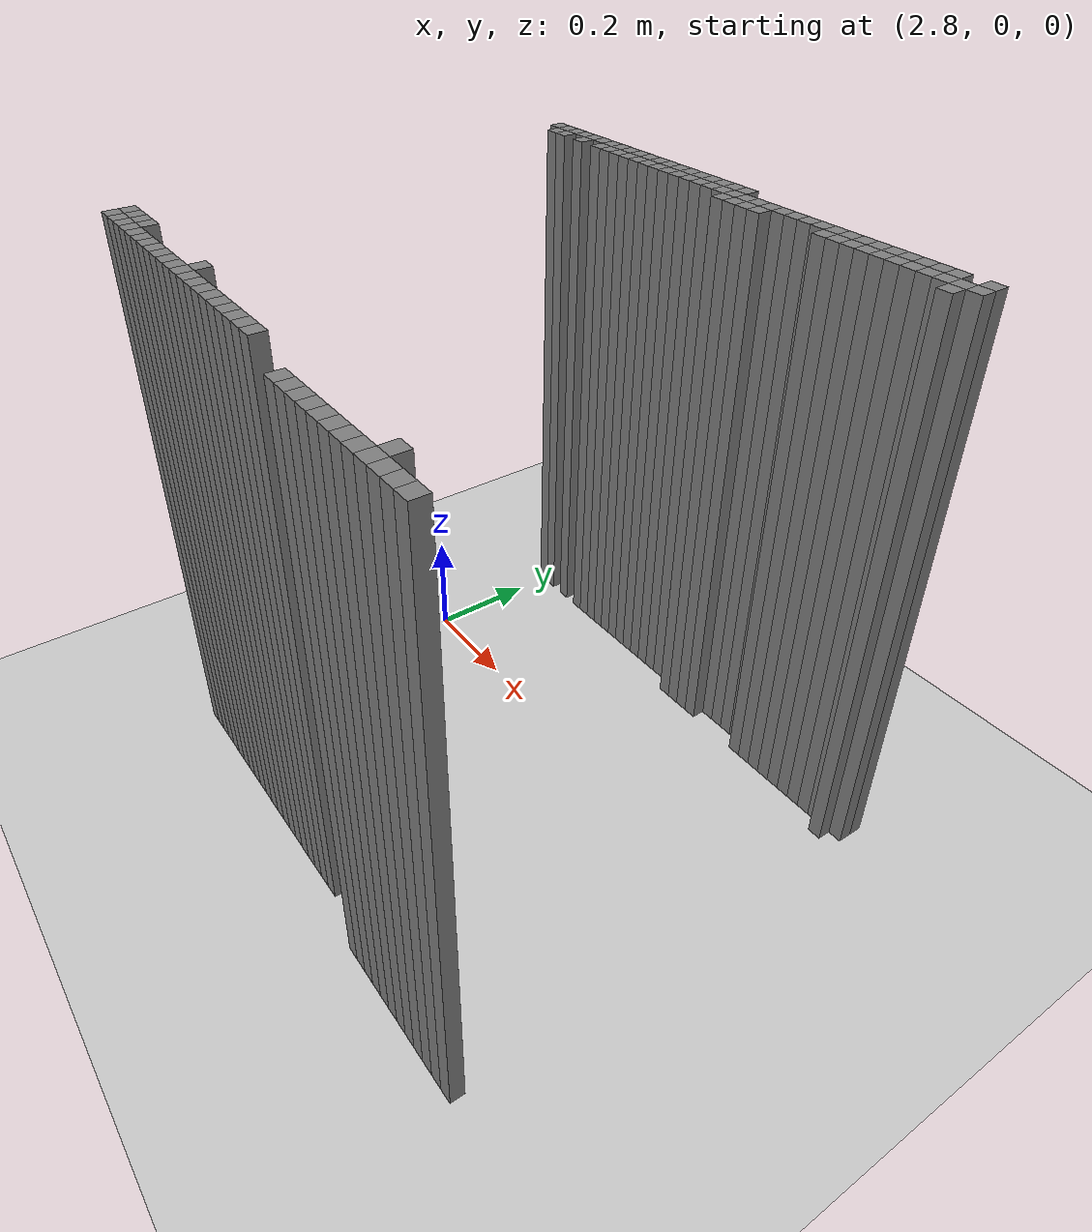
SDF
<sdf version="1.6">
 <world name="map_world">
  <include><uri>model://ground_plane</uri></include>
  <include><uri>model://sun</uri></include>
  <model name="obs_204_37">
   <static>true</static>
   <link name="link">
    <collision name="collision"><geometry><box><size>0.025 0.025 1.0</size></box></geometry></collision>
    <visual name="visual">
     <geometry><box><size>0.025 0.025 1.0</size></box></geometry>
     <material><ambient>0.5 0.5 0.5 1</ambient></material>
    </visual>
   </link>
   <pose>2.7737650000000005 0.30592900000000034 0.5 0 0 0</pose>
  </model>
  <model name="obs_205_37">
   <static>true</static>
   <link name="link">
    <collision name="collision"><geometry><box><size>0.025 0.025 1.0</size></box></geometry></collision>
    <visual name="visual">
     <geometry><box><size>0.025 0.025 1.0</size></box></geometry>
     <material><ambient>0.5 0.5 0.5 1</ambient></material>
    </visual>
   </link>
   <pose>2.798765 0.30592900000000034 0.5 0 0 0</pose>
  </model>
  <model name="obs_206_37">
   <static>true</static>
   <link name="link">
    <collision name="collision"><geometry><box><size>0.025 0.025 1.0</size></box></geometry></collision>
    <visual name="visual">
     <geometry><box><size>0.025 0.025 1.0</size></box></geometry>
     <material><ambient>0.5 0.5 0.5 1</ambient></material>
    </visual>
   </link>
   <pose>2.8237650000000003 0.30592900000000034 0.5 0 0 0</pose>
  </model>
  <model name="obs_207_37">
   <static>true</static>
   <link name="link">
    <collision name="collision"><geometry><box><size>0.025 0.025 1.0</size></box></geometry></collision>
    <visual name="visual">
     <geometry><box><size>0.025 0.025 1.0</size></box></geometry>
     <material><ambient>0.5 0.5 0.5 1</ambient></material>
    </visual>
   </link>
   <pose>2.8487650000000007 0.30592900000000034 0.5 0 0 0</pose>
  </model>
  <model name="obs_208_37">
   <static>true</static>
   <link name="link">
    <collision name="collision"><geometry><box><size>0.025 0.025 1.0</size></box></geometry></collision>
    <visual name="visual">
     <geometry><box><size>0.025 0.025 1.0</size></box></geometry>
     <material><ambient>0.5 0.5 0.5 1</ambient></material>
    </visual>
   </link>
   <pose>2.873765 0.30592900000000034 0.5 0 0 0</pose>
  </model>
  <model name="obs_209_37">
   <static>true</static>
   <link name="link">
    <collision name="collision"><geometry><box><size>0.025 0.025 1.0</size></box></geometry></collision>
    <visual name="visual">
     <geometry><box><size>0.025 0.025 1.0</size></box></geometry>
     <material><ambient>0.5 0.5 0.5 1</ambient></material>
    </visual>
   </link>
   <pose>2.8987650000000005 0.30592900000000034 0.5 0 0 0</pose>
  </model>
  <model name="obs_210_37">
   <static>true</static>
   <link name="link">
    <collision name="collision"><geometry><box><size>0.025 0.025 1.0</size></box></geometry></collision>
    <visual name="visual">
     <geometry><box><size>0.025 0.025 1.0</size></box></geometry>
     <material><ambient>0.5 0.5 0.5 1</ambient></material>
    </visual>
   </link>
   <pose>2.923765 0.30592900000000034 0.5 0 0 0</pose>
  </model>
  <model name="obs_211_37">
   <static>true</static>
   <link name="link">
    <collision name="collision"><geometry><box><size>0.025 0.025 1.0</size></box></geometry></collision>
    <visual name="visual">
     <geometry><box><size>0.025 0.025 1.0</size></box></geometry>
     <material><ambient>0.5 0.5 0.5 1</ambient></material>
    </visual>
   </link>
   <pose>2.9487650000000003 0.30592900000000034 0.5 0 0 0</pose>
  </model>
  <model name="obs_212_37">
   <static>true</static>
   <link name="link">
    <collision name="collision"><geometry><box><size>0.025 0.025 1.0</size></box></geometry></collision>
    <visual name="visual">
     <geometry><box><size>0.025 0.025 1.0</size></box></geometry>
     <material><ambient>0.5 0.5 0.5 1</ambient></material>
    </visual>
   </link>
   <pose>2.9737650000000007 0.30592900000000034 0.5 0 0 0</pose>
  </model>
  <model name="obs_213_37">
   <static>true</static>
   <link name="link">
    <collision name="collision"><geometry><box><size>0.025 0.025 1.0</size></box></geometry></collision>
    <visual name="visual">
     <geometry><box><size>0.025 0.025 1.0</size></box></geometry>
     <material><ambient>0.5 0.5 0.5 1</ambient></material>
    </visual>
   </link>
   <pose>2.998765 0.30592900000000034 0.5 0 0 0</pose>
  </model>
  <model name="obs_214_37">
   <static>true</static>
   <link name="link">
    <collision name="collision"><geometry><box><size>0.025 0.025 1.0</size></box></geometry></collision>
    <visual name="visual">
     <geometry><box><size>0.025 0.025 1.0</size></box></geometry>
     <material><ambient>0.5 0.5 0.5 1</ambient></material>
    </visual>
   </link>
   <pose>3.0237650000000005 0.30592900000000034 0.5 0 0 0</pose>
  </model>
  <model name="obs_215_37">
   <static>true</static>
   <link name="link">
    <collision name="collision"><geometry><box><size>0.025 0.025 1.0</size></box></geometry></collision>
    <visual name="visual">
     <geometry><box><size>0.025 0.025 1.0</size></box></geometry>
     <material><ambient>0.5 0.5 0.5 1</ambient></material>
    </visual>
   </link>
   <pose>3.048765 0.30592900000000034 0.5 0 0 0</pose>
  </model>
  <model name="obs_216_37">
   <static>true</static>
   <link name="link">
    <collision name="collision"><geometry><box><size>0.025 0.025 1.0</size></box></geometry></collision>
    <visual name="visual">
     <geometry><box><size>0.025 0.025 1.0</size></box></geometry>
     <material><ambient>0.5 0.5 0.5 1</ambient></material>
    </visual>
   </link>
   <pose>3.0737650000000003 0.30592900000000034 0.5 0 0 0</pose>
  </model>
  <model name="obs_217_37">
   <static>true</static>
   <link name="link">
    <collision name="collision"><geometry><box><size>0.025 0.025 1.0</size></box></geometry></collision>
    <visual name="visual">
     <geometry><box><size>0.025 0.025 1.0</size></box></geometry>
     <material><ambient>0.5 0.5 0.5 1</ambient></material>
    </visual>
   </link>
   <pose>3.0987650000000007 0.30592900000000034 0.5 0 0 0</pose>
  </model>
  <model name="obs_218_37">
   <static>true</static>
   <link name="link">
    <collision name="collision"><geometry><box><size>0.025 0.025 1.0</size></box></geometry></collision>
    <visual name="visual">
     <geometry><box><size>0.025 0.025 1.0</size></box></geometry>
     <material><ambient>0.5 0.5 0.5 1</ambient></material>
    </visual>
   </link>
   <pose>3.123765 0.30592900000000034 0.5 0 0 0</pose>
  </model>
  <model name="obs_219_37">
   <static>true</static>
   <link name="link">
    <collision name="collision"><geometry><box><size>0.025 0.025 1.0</size></box></geometry></collision>
    <visual name="visual">
     <geometry><box><size>0.025 0.025 1.0</size></box></geometry>
     <material><ambient>0.5 0.5 0.5 1</ambient></material>
    </visual>
   </link>
   <pose>3.1487650000000005 0.30592900000000034 0.5 0 0 0</pose>
  </model>
  <model name="obs_220_37">
   <static>true</static>
   <link name="link">
    <collision name="collision"><geometry><box><size>0.025 0.025 1.0</size></box></geometry></collision>
    <visual name="visual">
     <geometry><box><size>0.025 0.025 1.0</size></box></geometry>
     <material><ambient>0.5 0.5 0.5 1</ambient></material>
    </visual>
   </link>
   <pose>3.173765 0.30592900000000034 0.5 0 0 0</pose>
  </model>
  <model name="obs_221_37">
   <static>true</static>
   <link name="link">
    <collision name="collision"><geometry><box><size>0.025 0.025 1.0</size></box></geometry></collision>
    <visual name="visual">
     <geometry><box><size>0.025 0.025 1.0</size></box></geometry>
     <material><ambient>0.5 0.5 0.5 1</ambient></material>
    </visual>
   </link>
   <pose>3.1987650000000003 0.30592900000000034 0.5 0 0 0</pose>
  </model>
  <model name="obs_222_37">
   <static>true</static>
   <link name="link">
    <collision name="collision"><geometry><box><size>0.025 0.025 1.0</size></box></geometry></collision>
    <visual name="visual">
     <geometry><box><size>0.025 0.025 1.0</size></box></geometry>
     <material><ambient>0.5 0.5 0.5 1</ambient></material>
    </visual>
   </link>
   <pose>3.2237650000000007 0.30592900000000034 0.5 0 0 0</pose>
  </model>
  <model name="obs_223_37">
   <static>true</static>
   <link name="link">
    <collision name="collision"><geometry><box><size>0.025 0.025 1.0</size></box></geometry></collision>
    <visual name="visual">
     <geometry><box><size>0.025 0.025 1.0</size></box></geometry>
     <material><ambient>0.5 0.5 0.5 1</ambient></material>
    </visual>
   </link>
   <pose>3.248765 0.30592900000000034 0.5 0 0 0</pose>
  </model>
  <model name="obs_205_38">
   <static>true</static>
   <link name="link">
    <collision name="collision"><geometry><box><size>0.025 0.025 1.0</size></box></geometry></collision>
    <visual name="visual">
     <geometry><box><size>0.025 0.025 1.0</size></box></geometry>
     <material><ambient>0.5 0.5 0.5 1</ambient></material>
    </visual>
   </link>
   <pose>2.798765 0.280929 0.5 0 0 0</pose>
  </model>
  <model name="obs_206_38">
   <static>true</static>
   <link name="link">
    <collision name="collision"><geometry><box><size>0.025 0.025 1.0</size></box></geometry></collision>
    <visual name="visual">
     <geometry><box><size>0.025 0.025 1.0</size></box></geometry>
     <material><ambient>0.5 0.5 0.5 1</ambient></material>
    </visual>
   </link>
   <pose>2.8237650000000003 0.280929 0.5 0 0 0</pose>
  </model>
  <model name="obs_208_38">
   <static>true</static>
   <link name="link">
    <collision name="collision"><geometry><box><size>0.025 0.025 1.0</size></box></geometry></collision>
    <visual name="visual">
     <geometry><box><size>0.025 0.025 1.0</size></box></geometry>
     <material><ambient>0.5 0.5 0.5 1</ambient></material>
    </visual>
   </link>
   <pose>2.873765 0.280929 0.5 0 0 0</pose>
  </model>
  <model name="obs_210_38">
   <static>true</static>
   <link name="link">
    <collision name="collision"><geometry><box><size>0.025 0.025 1.0</size></box></geometry></collision>
    <visual name="visual">
     <geometry><box><size>0.025 0.025 1.0</size></box></geometry>
     <material><ambient>0.5 0.5 0.5 1</ambient></material>
    </visual>
   </link>
   <pose>2.923765 0.280929 0.5 0 0 0</pose>
  </model>
  <model name="obs_211_38">
   <static>true</static>
   <link name="link">
    <collision name="collision"><geometry><box><size>0.025 0.025 1.0</size></box></geometry></collision>
    <visual name="visual">
     <geometry><box><size>0.025 0.025 1.0</size></box></geometry>
     <material><ambient>0.5 0.5 0.5 1</ambient></material>
    </visual>
   </link>
   <pose>2.9487650000000003 0.280929 0.5 0 0 0</pose>
  </model>
  <model name="obs_212_38">
   <static>true</static>
   <link name="link">
    <collision name="collision"><geometry><box><size>0.025 0.025 1.0</size></box></geometry></collision>
    <visual name="visual">
     <geometry><box><size>0.025 0.025 1.0</size></box></geometry>
     <material><ambient>0.5 0.5 0.5 1</ambient></material>
    </visual>
   </link>
   <pose>2.9737650000000007 0.280929 0.5 0 0 0</pose>
  </model>
  <model name="obs_213_38">
   <static>true</static>
   <link name="link">
    <collision name="collision"><geometry><box><size>0.025 0.025 1.0</size></box></geometry></collision>
    <visual name="visual">
     <geometry><box><size>0.025 0.025 1.0</size></box></geometry>
     <material><ambient>0.5 0.5 0.5 1</ambient></material>
    </visual>
   </link>
   <pose>2.998765 0.280929 0.5 0 0 0</pose>
  </model>
  <model name="obs_214_38">
   <static>true</static>
   <link name="link">
    <collision name="collision"><geometry><box><size>0.025 0.025 1.0</size></box></geometry></collision>
    <visual name="visual">
     <geometry><box><size>0.025 0.025 1.0</size></box></geometry>
     <material><ambient>0.5 0.5 0.5 1</ambient></material>
    </visual>
   </link>
   <pose>3.0237650000000005 0.280929 0.5 0 0 0</pose>
  </model>
  <model name="obs_215_38">
   <static>true</static>
   <link name="link">
    <collision name="collision"><geometry><box><size>0.025 0.025 1.0</size></box></geometry></collision>
    <visual name="visual">
     <geometry><box><size>0.025 0.025 1.0</size></box></geometry>
     <material><ambient>0.5 0.5 0.5 1</ambient></material>
    </visual>
   </link>
   <pose>3.048765 0.280929 0.5 0 0 0</pose>
  </model>
  <model name="obs_216_38">
   <static>true</static>
   <link name="link">
    <collision name="collision"><geometry><box><size>0.025 0.025 1.0</size></box></geometry></collision>
    <visual name="visual">
     <geometry><box><size>0.025 0.025 1.0</size></box></geometry>
     <material><ambient>0.5 0.5 0.5 1</ambient></material>
    </visual>
   </link>
   <pose>3.0737650000000003 0.280929 0.5 0 0 0</pose>
  </model>
  <model name="obs_217_38">
   <static>true</static>
   <link name="link">
    <collision name="collision"><geometry><box><size>0.025 0.025 1.0</size></box></geometry></collision>
    <visual name="visual">
     <geometry><box><size>0.025 0.025 1.0</size></box></geometry>
     <material><ambient>0.5 0.5 0.5 1</ambient></material>
    </visual>
   </link>
   <pose>3.0987650000000007 0.280929 0.5 0 0 0</pose>
  </model>
  <model name="obs_218_38">
   <static>true</static>
   <link name="link">
    <collision name="collision"><geometry><box><size>0.025 0.025 1.0</size></box></geometry></collision>
    <visual name="visual">
     <geometry><box><size>0.025 0.025 1.0</size></box></geometry>
     <material><ambient>0.5 0.5 0.5 1</ambient></material>
    </visual>
   </link>
   <pose>3.123765 0.280929 0.5 0 0 0</pose>
  </model>
  <model name="obs_219_38">
   <static>true</static>
   <link name="link">
    <collision name="collision"><geometry><box><size>0.025 0.025 1.0</size></box></geometry></collision>
    <visual name="visual">
     <geometry><box><size>0.025 0.025 1.0</size></box></geometry>
     <material><ambient>0.5 0.5 0.5 1</ambient></material>
    </visual>
   </link>
   <pose>3.1487650000000005 0.280929 0.5 0 0 0</pose>
  </model>
  <model name="obs_220_38">
   <static>true</static>
   <link name="link">
    <collision name="collision"><geometry><box><size>0.025 0.025 1.0</size></box></geometry></collision>
    <visual name="visual">
     <geometry><box><size>0.025 0.025 1.0</size></box></geometry>
     <material><ambient>0.5 0.5 0.5 1</ambient></material>
    </visual>
   </link>
   <pose>3.173765 0.280929 0.5 0 0 0</pose>
  </model>
  <model name="obs_221_38">
   <static>true</static>
   <link name="link">
    <collision name="collision"><geometry><box><size>0.025 0.025 1.0</size></box></geometry></collision>
    <visual name="visual">
     <geometry><box><size>0.025 0.025 1.0</size></box></geometry>
     <material><ambient>0.5 0.5 0.5 1</ambient></material>
    </visual>
   </link>
   <pose>3.1987650000000003 0.280929 0.5 0 0 0</pose>
  </model>
  <model name="obs_222_38">
   <static>true</static>
   <link name="link">
    <collision name="collision"><geometry><box><size>0.025 0.025 1.0</size></box></geometry></collision>
    <visual name="visual">
     <geometry><box><size>0.025 0.025 1.0</size></box></geometry>
     <material><ambient>0.5 0.5 0.5 1</ambient></material>
    </visual>
   </link>
   <pose>3.2237650000000007 0.280929 0.5 0 0 0</pose>
  </model>
  <model name="obs_223_38">
   <static>true</static>
   <link name="link">
    <collision name="collision"><geometry><box><size>0.025 0.025 1.0</size></box></geometry></collision>
    <visual name="visual">
     <geometry><box><size>0.025 0.025 1.0</size></box></geometry>
     <material><ambient>0.5 0.5 0.5 1</ambient></material>
    </visual>
   </link>
   <pose>3.248765 0.280929 0.5 0 0 0</pose>
  </model>
  <model name="obs_224_38">
   <static>true</static>
   <link name="link">
    <collision name="collision"><geometry><box><size>0.025 0.025 1.0</size></box></geometry></collision>
    <visual name="visual">
     <geometry><box><size>0.025 0.025 1.0</size></box></geometry>
     <material><ambient>0.5 0.5 0.5 1</ambient></material>
    </visual>
   </link>
   <pose>3.2737650000000005 0.280929 0.5 0 0 0</pose>
  </model>
  <model name="obs_225_38">
   <static>true</static>
   <link name="link">
    <collision name="collision"><geometry><box><size>0.025 0.025 1.0</size></box></geometry></collision>
    <visual name="visual">
     <geometry><box><size>0.025 0.025 1.0</size></box></geometry>
     <material><ambient>0.5 0.5 0.5 1</ambient></material>
    </visual>
   </link>
   <pose>3.298765 0.280929 0.5 0 0 0</pose>
  </model>
  <model name="obs_226_38">
   <static>true</static>
   <link name="link">
    <collision name="collision"><geometry><box><size>0.025 0.025 1.0</size></box></geometry></collision>
    <visual name="visual">
     <geometry><box><size>0.025 0.025 1.0</size></box></geometry>
     <material><ambient>0.5 0.5 0.5 1</ambient></material>
    </visual>
   </link>
   <pose>3.3237650000000003 0.280929 0.5 0 0 0</pose>
  </model>
  <model name="obs_227_38">
   <static>true</static>
   <link name="link">
    <collision name="collision"><geometry><box><size>0.025 0.025 1.0</size></box></geometry></collision>
    <visual name="visual">
     <geometry><box><size>0.025 0.025 1.0</size></box></geometry>
     <material><ambient>0.5 0.5 0.5 1</ambient></material>
    </visual>
   </link>
   <pose>3.3487650000000007 0.280929 0.5 0 0 0</pose>
  </model>
  <model name="obs_228_38">
   <static>true</static>
   <link name="link">
    <collision name="collision"><geometry><box><size>0.025 0.025 1.0</size></box></geometry></collision>
    <visual name="visual">
     <geometry><box><size>0.025 0.025 1.0</size></box></geometry>
     <material><ambient>0.5 0.5 0.5 1</ambient></material>
    </visual>
   </link>
   <pose>3.373765 0.280929 0.5 0 0 0</pose>
  </model>
  <model name="obs_229_38">
   <static>true</static>
   <link name="link">
    <collision name="collision"><geometry><box><size>0.025 0.025 1.0</size></box></geometry></collision>
    <visual name="visual">
     <geometry><box><size>0.025 0.025 1.0</size></box></geometry>
     <material><ambient>0.5 0.5 0.5 1</ambient></material>
    </visual>
   </link>
   <pose>3.3987650000000005 0.280929 0.5 0 0 0</pose>
  </model>
  <model name="obs_230_38">
   <static>true</static>
   <link name="link">
    <collision name="collision"><geometry><box><size>0.025 0.025 1.0</size></box></geometry></collision>
    <visual name="visual">
     <geometry><box><size>0.025 0.025 1.0</size></box></geometry>
     <material><ambient>0.5 0.5 0.5 1</ambient></material>
    </visual>
   </link>
   <pose>3.423765 0.280929 0.5 0 0 0</pose>
  </model>
  <model name="obs_231_38">
   <static>true</static>
   <link name="link">
    <collision name="collision"><geometry><box><size>0.025 0.025 1.0</size></box></geometry></collision>
    <visual name="visual">
     <geometry><box><size>0.025 0.025 1.0</size></box></geometry>
     <material><ambient>0.5 0.5 0.5 1</ambient></material>
    </visual>
   </link>
   <pose>3.4487650000000003 0.280929 0.5 0 0 0</pose>
  </model>
  <model name="obs_232_38">
   <static>true</static>
   <link name="link">
    <collision name="collision"><geometry><box><size>0.025 0.025 1.0</size></box></geometry></collision>
    <visual name="visual">
     <geometry><box><size>0.025 0.025 1.0</size></box></geometry>
     <material><ambient>0.5 0.5 0.5 1</ambient></material>
    </visual>
   </link>
   <pose>3.4737650000000007 0.280929 0.5 0 0 0</pose>
  </model>
  <model name="obs_233_38">
   <static>true</static>
   <link name="link">
    <collision name="collision"><geometry><box><size>0.025 0.025 1.0</size></box></geometry></collision>
    <visual name="visual">
     <geometry><box><size>0.025 0.025 1.0</size></box></geometry>
     <material><ambient>0.5 0.5 0.5 1</ambient></material>
    </visual>
   </link>
   <pose>3.498765 0.280929 0.5 0 0 0</pose>
  </model>
  <model name="obs_234_38">
   <static>true</static>
   <link name="link">
    <collision name="collision"><geometry><box><size>0.025 0.025 1.0</size></box></geometry></collision>
    <visual name="visual">
     <geometry><box><size>0.025 0.025 1.0</size></box></geometry>
     <material><ambient>0.5 0.5 0.5 1</ambient></material>
    </visual>
   </link>
   <pose>3.5237650000000005 0.280929 0.5 0 0 0</pose>
  </model>
  <model name="obs_235_38">
   <static>true</static>
   <link name="link">
    <collision name="collision"><geometry><box><size>0.025 0.025 1.0</size></box></geometry></collision>
    <visual name="visual">
     <geometry><box><size>0.025 0.025 1.0</size></box></geometry>
     <material><ambient>0.5 0.5 0.5 1</ambient></material>
    </visual>
   </link>
   <pose>3.548765 0.280929 0.5 0 0 0</pose>
  </model>
  <model name="obs_236_38">
   <static>true</static>
   <link name="link">
    <collision name="collision"><geometry><box><size>0.025 0.025 1.0</size></box></geometry></collision>
    <visual name="visual">
     <geometry><box><size>0.025 0.025 1.0</size></box></geometry>
     <material><ambient>0.5 0.5 0.5 1</ambient></material>
    </visual>
   </link>
   <pose>3.5737650000000003 0.280929 0.5 0 0 0</pose>
  </model>
  <model name="obs_237_38">
   <static>true</static>
   <link name="link">
    <collision name="collision"><geometry><box><size>0.025 0.025 1.0</size></box></geometry></collision>
    <visual name="visual">
     <geometry><box><size>0.025 0.025 1.0</size></box></geometry>
     <material><ambient>0.5 0.5 0.5 1</ambient></material>
    </visual>
   </link>
   <pose>3.5987650000000007 0.280929 0.5 0 0 0</pose>
  </model>
  <model name="obs_238_38">
   <static>true</static>
   <link name="link">
    <collision name="collision"><geometry><box><size>0.025 0.025 1.0</size></box></geometry></collision>
    <visual name="visual">
     <geometry><box><size>0.025 0.025 1.0</size></box></geometry>
     <material><ambient>0.5 0.5 0.5 1</ambient></material>
    </visual>
   </link>
   <pose>3.623765 0.280929 0.5 0 0 0</pose>
  </model>
  <model name="obs_239_38">
   <static>true</static>
   <link name="link">
    <collision name="collision"><geometry><box><size>0.025 0.025 1.0</size></box></geometry></collision>
    <visual name="visual">
     <geometry><box><size>0.025 0.025 1.0</size></box></geometry>
     <material><ambient>0.5 0.5 0.5 1</ambient></material>
    </visual>
   </link>
   <pose>3.6487650000000005 0.280929 0.5 0 0 0</pose>
  </model>
  <model name="obs_241_38">
   <static>true</static>
   <link name="link">
    <collision name="collision"><geometry><box><size>0.025 0.025 1.0</size></box></geometry></collision>
    <visual name="visual">
     <geometry><box><size>0.025 0.025 1.0</size></box></geometry>
     <material><ambient>0.5 0.5 0.5 1</ambient></material>
    </visual>
   </link>
   <pose>3.6987650000000003 0.280929 0.5 0 0 0</pose>
  </model>
  <model name="obs_223_39">
   <static>true</static>
   <link name="link">
    <collision name="collision"><geometry><box><size>0.025 0.025 1.0</size></box></geometry></collision>
    <visual name="visual">
     <geometry><box><size>0.025 0.025 1.0</size></box></geometry>
     <material><ambient>0.5 0.5 0.5 1</ambient></material>
    </visual>
   </link>
   <pose>3.248765 0.2559290000000001 0.5 0 0 0</pose>
  </model>
  <model name="obs_224_39">
   <static>true</static>
   <link name="link">
    <collision name="collision"><geometry><box><size>0.025 0.025 1.0</size></box></geometry></collision>
    <visual name="visual">
     <geometry><box><size>0.025 0.025 1.0</size></box></geometry>
     <material><ambient>0.5 0.5 0.5 1</ambient></material>
    </visual>
   </link>
   <pose>3.2737650000000005 0.2559290000000001 0.5 0 0 0</pose>
  </model>
  <model name="obs_225_39">
   <static>true</static>
   <link name="link">
    <collision name="collision"><geometry><box><size>0.025 0.025 1.0</size></box></geometry></collision>
    <visual name="visual">
     <geometry><box><size>0.025 0.025 1.0</size></box></geometry>
     <material><ambient>0.5 0.5 0.5 1</ambient></material>
    </visual>
   </link>
   <pose>3.298765 0.2559290000000001 0.5 0 0 0</pose>
  </model>
  <model name="obs_226_39">
   <static>true</static>
   <link name="link">
    <collision name="collision"><geometry><box><size>0.025 0.025 1.0</size></box></geometry></collision>
    <visual name="visual">
     <geometry><box><size>0.025 0.025 1.0</size></box></geometry>
     <material><ambient>0.5 0.5 0.5 1</ambient></material>
    </visual>
   </link>
   <pose>3.3237650000000003 0.2559290000000001 0.5 0 0 0</pose>
  </model>
  <model name="obs_231_39">
   <static>true</static>
   <link name="link">
    <collision name="collision"><geometry><box><size>0.025 0.025 1.0</size></box></geometry></collision>
    <visual name="visual">
     <geometry><box><size>0.025 0.025 1.0</size></box></geometry>
     <material><ambient>0.5 0.5 0.5 1</ambient></material>
    </visual>
   </link>
   <pose>3.4487650000000003 0.2559290000000001 0.5 0 0 0</pose>
  </model>
  <model name="obs_232_39">
   <static>true</static>
   <link name="link">
    <collision name="collision"><geometry><box><size>0.025 0.025 1.0</size></box></geometry></collision>
    <visual name="visual">
     <geometry><box><size>0.025 0.025 1.0</size></box></geometry>
     <material><ambient>0.5 0.5 0.5 1</ambient></material>
    </visual>
   </link>
   <pose>3.4737650000000007 0.2559290000000001 0.5 0 0 0</pose>
  </model>
  <model name="obs_233_39">
   <static>true</static>
   <link name="link">
    <collision name="collision"><geometry><box><size>0.025 0.025 1.0</size></box></geometry></collision>
    <visual name="visual">
     <geometry><box><size>0.025 0.025 1.0</size></box></geometry>
     <material><ambient>0.5 0.5 0.5 1</ambient></material>
    </visual>
   </link>
   <pose>3.498765 0.2559290000000001 0.5 0 0 0</pose>
  </model>
  <model name="obs_234_39">
   <static>true</static>
   <link name="link">
    <collision name="collision"><geometry><box><size>0.025 0.025 1.0</size></box></geometry></collision>
    <visual name="visual">
     <geometry><box><size>0.025 0.025 1.0</size></box></geometry>
     <material><ambient>0.5 0.5 0.5 1</ambient></material>
    </visual>
   </link>
   <pose>3.5237650000000005 0.2559290000000001 0.5 0 0 0</pose>
  </model>
  <model name="obs_235_39">
   <static>true</static>
   <link name="link">
    <collision name="collision"><geometry><box><size>0.025 0.025 1.0</size></box></geometry></collision>
    <visual name="visual">
     <geometry><box><size>0.025 0.025 1.0</size></box></geometry>
     <material><ambient>0.5 0.5 0.5 1</ambient></material>
    </visual>
   </link>
   <pose>3.548765 0.2559290000000001 0.5 0 0 0</pose>
  </model>
  <model name="obs_236_39">
   <static>true</static>
   <link name="link">
    <collision name="collision"><geometry><box><size>0.025 0.025 1.0</size></box></geometry></collision>
    <visual name="visual">
     <geometry><box><size>0.025 0.025 1.0</size></box></geometry>
     <material><ambient>0.5 0.5 0.5 1</ambient></material>
    </visual>
   </link>
   <pose>3.5737650000000003 0.2559290000000001 0.5 0 0 0</pose>
  </model>
  <model name="obs_237_39">
   <static>true</static>
   <link name="link">
    <collision name="collision"><geometry><box><size>0.025 0.025 1.0</size></box></geometry></collision>
    <visual name="visual">
     <geometry><box><size>0.025 0.025 1.0</size></box></geometry>
     <material><ambient>0.5 0.5 0.5 1</ambient></material>
    </visual>
   </link>
   <pose>3.5987650000000007 0.2559290000000001 0.5 0 0 0</pose>
  </model>
  <model name="obs_238_39">
   <static>true</static>
   <link name="link">
    <collision name="collision"><geometry><box><size>0.025 0.025 1.0</size></box></geometry></collision>
    <visual name="visual">
     <geometry><box><size>0.025 0.025 1.0</size></box></geometry>
     <material><ambient>0.5 0.5 0.5 1</ambient></material>
    </visual>
   </link>
   <pose>3.623765 0.2559290000000001 0.5 0 0 0</pose>
  </model>
  <model name="obs_239_39">
   <static>true</static>
   <link name="link">
    <collision name="collision"><geometry><box><size>0.025 0.025 1.0</size></box></geometry></collision>
    <visual name="visual">
     <geometry><box><size>0.025 0.025 1.0</size></box></geometry>
     <material><ambient>0.5 0.5 0.5 1</ambient></material>
    </visual>
   </link>
   <pose>3.6487650000000005 0.2559290000000001 0.5 0 0 0</pose>
  </model>
  <model name="obs_240_39">
   <static>true</static>
   <link name="link">
    <collision name="collision"><geometry><box><size>0.025 0.025 1.0</size></box></geometry></collision>
    <visual name="visual">
     <geometry><box><size>0.025 0.025 1.0</size></box></geometry>
     <material><ambient>0.5 0.5 0.5 1</ambient></material>
    </visual>
   </link>
   <pose>3.673765 0.2559290000000001 0.5 0 0 0</pose>
  </model>
  <model name="obs_241_39">
   <static>true</static>
   <link name="link">
    <collision name="collision"><geometry><box><size>0.025 0.025 1.0</size></box></geometry></collision>
    <visual name="visual">
     <geometry><box><size>0.025 0.025 1.0</size></box></geometry>
     <material><ambient>0.5 0.5 0.5 1</ambient></material>
    </visual>
   </link>
   <pose>3.6987650000000003 0.2559290000000001 0.5 0 0 0</pose>
  </model>
  <model name="obs_240_40">
   <static>true</static>
   <link name="link">
    <collision name="collision"><geometry><box><size>0.025 0.025 1.0</size></box></geometry></collision>
    <visual name="visual">
     <geometry><box><size>0.025 0.025 1.0</size></box></geometry>
     <material><ambient>0.5 0.5 0.5 1</ambient></material>
    </visual>
   </link>
   <pose>3.673765 0.23092900000000016 0.5 0 0 0</pose>
  </model>
  <model name="obs_205_69">
   <static>true</static>
   <link name="link">
    <collision name="collision"><geometry><box><size>0.025 0.025 1.0</size></box></geometry></collision>
    <visual name="visual">
     <geometry><box><size>0.025 0.025 1.0</size></box></geometry>
     <material><ambient>0.5 0.5 0.5 1</ambient></material>
    </visual>
   </link>
   <pose>2.798765 -0.4940709999999999 0.5 0 0 0</pose>
  </model>
  <model name="obs_206_69">
   <static>true</static>
   <link name="link">
    <collision name="collision"><geometry><box><size>0.025 0.025 1.0</size></box></geometry></collision>
    <visual name="visual">
     <geometry><box><size>0.025 0.025 1.0</size></box></geometry>
     <material><ambient>0.5 0.5 0.5 1</ambient></material>
    </visual>
   </link>
   <pose>2.8237650000000003 -0.4940709999999999 0.5 0 0 0</pose>
  </model>
  <model name="obs_207_69">
   <static>true</static>
   <link name="link">
    <collision name="collision"><geometry><box><size>0.025 0.025 1.0</size></box></geometry></collision>
    <visual name="visual">
     <geometry><box><size>0.025 0.025 1.0</size></box></geometry>
     <material><ambient>0.5 0.5 0.5 1</ambient></material>
    </visual>
   </link>
   <pose>2.8487650000000007 -0.4940709999999999 0.5 0 0 0</pose>
  </model>
  <model name="obs_208_69">
   <static>true</static>
   <link name="link">
    <collision name="collision"><geometry><box><size>0.025 0.025 1.0</size></box></geometry></collision>
    <visual name="visual">
     <geometry><box><size>0.025 0.025 1.0</size></box></geometry>
     <material><ambient>0.5 0.5 0.5 1</ambient></material>
    </visual>
   </link>
   <pose>2.873765 -0.4940709999999999 0.5 0 0 0</pose>
  </model>
  <model name="obs_216_69">
   <static>true</static>
   <link name="link">
    <collision name="collision"><geometry><box><size>0.025 0.025 1.0</size></box></geometry></collision>
    <visual name="visual">
     <geometry><box><size>0.025 0.025 1.0</size></box></geometry>
     <material><ambient>0.5 0.5 0.5 1</ambient></material>
    </visual>
   </link>
   <pose>3.0737650000000003 -0.4940709999999999 0.5 0 0 0</pose>
  </model>
  <model name="obs_205_70">
   <static>true</static>
   <link name="link">
    <collision name="collision"><geometry><box><size>0.025 0.025 1.0</size></box></geometry></collision>
    <visual name="visual">
     <geometry><box><size>0.025 0.025 1.0</size></box></geometry>
     <material><ambient>0.5 0.5 0.5 1</ambient></material>
    </visual>
   </link>
   <pose>2.798765 -0.5190709999999998 0.5 0 0 0</pose>
  </model>
  <model name="obs_206_70">
   <static>true</static>
   <link name="link">
    <collision name="collision"><geometry><box><size>0.025 0.025 1.0</size></box></geometry></collision>
    <visual name="visual">
     <geometry><box><size>0.025 0.025 1.0</size></box></geometry>
     <material><ambient>0.5 0.5 0.5 1</ambient></material>
    </visual>
   </link>
   <pose>2.8237650000000003 -0.5190709999999998 0.5 0 0 0</pose>
  </model>
  <model name="obs_207_70">
   <static>true</static>
   <link name="link">
    <collision name="collision"><geometry><box><size>0.025 0.025 1.0</size></box></geometry></collision>
    <visual name="visual">
     <geometry><box><size>0.025 0.025 1.0</size></box></geometry>
     <material><ambient>0.5 0.5 0.5 1</ambient></material>
    </visual>
   </link>
   <pose>2.8487650000000007 -0.5190709999999998 0.5 0 0 0</pose>
  </model>
  <model name="obs_208_70">
   <static>true</static>
   <link name="link">
    <collision name="collision"><geometry><box><size>0.025 0.025 1.0</size></box></geometry></collision>
    <visual name="visual">
     <geometry><box><size>0.025 0.025 1.0</size></box></geometry>
     <material><ambient>0.5 0.5 0.5 1</ambient></material>
    </visual>
   </link>
   <pose>2.873765 -0.5190709999999998 0.5 0 0 0</pose>
  </model>
  <model name="obs_209_70">
   <static>true</static>
   <link name="link">
    <collision name="collision"><geometry><box><size>0.025 0.025 1.0</size></box></geometry></collision>
    <visual name="visual">
     <geometry><box><size>0.025 0.025 1.0</size></box></geometry>
     <material><ambient>0.5 0.5 0.5 1</ambient></material>
    </visual>
   </link>
   <pose>2.8987650000000005 -0.5190709999999998 0.5 0 0 0</pose>
  </model>
  <model name="obs_210_70">
   <static>true</static>
   <link name="link">
    <collision name="collision"><geometry><box><size>0.025 0.025 1.0</size></box></geometry></collision>
    <visual name="visual">
     <geometry><box><size>0.025 0.025 1.0</size></box></geometry>
     <material><ambient>0.5 0.5 0.5 1</ambient></material>
    </visual>
   </link>
   <pose>2.923765 -0.5190709999999998 0.5 0 0 0</pose>
  </model>
  <model name="obs_211_70">
   <static>true</static>
   <link name="link">
    <collision name="collision"><geometry><box><size>0.025 0.025 1.0</size></box></geometry></collision>
    <visual name="visual">
     <geometry><box><size>0.025 0.025 1.0</size></box></geometry>
     <material><ambient>0.5 0.5 0.5 1</ambient></material>
    </visual>
   </link>
   <pose>2.9487650000000003 -0.5190709999999998 0.5 0 0 0</pose>
  </model>
  <model name="obs_212_70">
   <static>true</static>
   <link name="link">
    <collision name="collision"><geometry><box><size>0.025 0.025 1.0</size></box></geometry></collision>
    <visual name="visual">
     <geometry><box><size>0.025 0.025 1.0</size></box></geometry>
     <material><ambient>0.5 0.5 0.5 1</ambient></material>
    </visual>
   </link>
   <pose>2.9737650000000007 -0.5190709999999998 0.5 0 0 0</pose>
  </model>
  <model name="obs_213_70">
   <static>true</static>
   <link name="link">
    <collision name="collision"><geometry><box><size>0.025 0.025 1.0</size></box></geometry></collision>
    <visual name="visual">
     <geometry><box><size>0.025 0.025 1.0</size></box></geometry>
     <material><ambient>0.5 0.5 0.5 1</ambient></material>
    </visual>
   </link>
   <pose>2.998765 -0.5190709999999998 0.5 0 0 0</pose>
  </model>
  <model name="obs_214_70">
   <static>true</static>
   <link name="link">
    <collision name="collision"><geometry><box><size>0.025 0.025 1.0</size></box></geometry></collision>
    <visual name="visual">
     <geometry><box><size>0.025 0.025 1.0</size></box></geometry>
     <material><ambient>0.5 0.5 0.5 1</ambient></material>
    </visual>
   </link>
   <pose>3.0237650000000005 -0.5190709999999998 0.5 0 0 0</pose>
  </model>
  <model name="obs_215_70">
   <static>true</static>
   <link name="link">
    <collision name="collision"><geometry><box><size>0.025 0.025 1.0</size></box></geometry></collision>
    <visual name="visual">
     <geometry><box><size>0.025 0.025 1.0</size></box></geometry>
     <material><ambient>0.5 0.5 0.5 1</ambient></material>
    </visual>
   </link>
   <pose>3.048765 -0.5190709999999998 0.5 0 0 0</pose>
  </model>
  <model name="obs_216_70">
   <static>true</static>
   <link name="link">
    <collision name="collision"><geometry><box><size>0.025 0.025 1.0</size></box></geometry></collision>
    <visual name="visual">
     <geometry><box><size>0.025 0.025 1.0</size></box></geometry>
     <material><ambient>0.5 0.5 0.5 1</ambient></material>
    </visual>
   </link>
   <pose>3.0737650000000003 -0.5190709999999998 0.5 0 0 0</pose>
  </model>
  <model name="obs_217_70">
   <static>true</static>
   <link name="link">
    <collision name="collision"><geometry><box><size>0.025 0.025 1.0</size></box></geometry></collision>
    <visual name="visual">
     <geometry><box><size>0.025 0.025 1.0</size></box></geometry>
     <material><ambient>0.5 0.5 0.5 1</ambient></material>
    </visual>
   </link>
   <pose>3.0987650000000007 -0.5190709999999998 0.5 0 0 0</pose>
  </model>
  <model name="obs_218_70">
   <static>true</static>
   <link name="link">
    <collision name="collision"><geometry><box><size>0.025 0.025 1.0</size></box></geometry></collision>
    <visual name="visual">
     <geometry><box><size>0.025 0.025 1.0</size></box></geometry>
     <material><ambient>0.5 0.5 0.5 1</ambient></material>
    </visual>
   </link>
   <pose>3.123765 -0.5190709999999998 0.5 0 0 0</pose>
  </model>
  <model name="obs_219_70">
   <static>true</static>
   <link name="link">
    <collision name="collision"><geometry><box><size>0.025 0.025 1.0</size></box></geometry></collision>
    <visual name="visual">
     <geometry><box><size>0.025 0.025 1.0</size></box></geometry>
     <material><ambient>0.5 0.5 0.5 1</ambient></material>
    </visual>
   </link>
   <pose>3.1487650000000005 -0.5190709999999998 0.5 0 0 0</pose>
  </model>
  <model name="obs_220_70">
   <static>true</static>
   <link name="link">
    <collision name="collision"><geometry><box><size>0.025 0.025 1.0</size></box></geometry></collision>
    <visual name="visual">
     <geometry><box><size>0.025 0.025 1.0</size></box></geometry>
     <material><ambient>0.5 0.5 0.5 1</ambient></material>
    </visual>
   </link>
   <pose>3.173765 -0.5190709999999998 0.5 0 0 0</pose>
  </model>
  <model name="obs_221_70">
   <static>true</static>
   <link name="link">
    <collision name="collision"><geometry><box><size>0.025 0.025 1.0</size></box></geometry></collision>
    <visual name="visual">
     <geometry><box><size>0.025 0.025 1.0</size></box></geometry>
     <material><ambient>0.5 0.5 0.5 1</ambient></material>
    </visual>
   </link>
   <pose>3.1987650000000003 -0.5190709999999998 0.5 0 0 0</pose>
  </model>
  <model name="obs_222_70">
   <static>true</static>
   <link name="link">
    <collision name="collision"><geometry><box><size>0.025 0.025 1.0</size></box></geometry></collision>
    <visual name="visual">
     <geometry><box><size>0.025 0.025 1.0</size></box></geometry>
     <material><ambient>0.5 0.5 0.5 1</ambient></material>
    </visual>
   </link>
   <pose>3.2237650000000007 -0.5190709999999998 0.5 0 0 0</pose>
  </model>
  <model name="obs_223_70">
   <static>true</static>
   <link name="link">
    <collision name="collision"><geometry><box><size>0.025 0.025 1.0</size></box></geometry></collision>
    <visual name="visual">
     <geometry><box><size>0.025 0.025 1.0</size></box></geometry>
     <material><ambient>0.5 0.5 0.5 1</ambient></material>
    </visual>
   </link>
   <pose>3.248765 -0.5190709999999998 0.5 0 0 0</pose>
  </model>
  <model name="obs_224_70">
   <static>true</static>
   <link name="link">
    <collision name="collision"><geometry><box><size>0.025 0.025 1.0</size></box></geometry></collision>
    <visual name="visual">
     <geometry><box><size>0.025 0.025 1.0</size></box></geometry>
     <material><ambient>0.5 0.5 0.5 1</ambient></material>
    </visual>
   </link>
   <pose>3.2737650000000005 -0.5190709999999998 0.5 0 0 0</pose>
  </model>
  <model name="obs_225_70">
   <static>true</static>
   <link name="link">
    <collision name="collision"><geometry><box><size>0.025 0.025 1.0</size></box></geometry></collision>
    <visual name="visual">
     <geometry><box><size>0.025 0.025 1.0</size></box></geometry>
     <material><ambient>0.5 0.5 0.5 1</ambient></material>
    </visual>
   </link>
   <pose>3.298765 -0.5190709999999998 0.5 0 0 0</pose>
  </model>
  <model name="obs_238_70">
   <static>true</static>
   <link name="link">
    <collision name="collision"><geometry><box><size>0.025 0.025 1.0</size></box></geometry></collision>
    <visual name="visual">
     <geometry><box><size>0.025 0.025 1.0</size></box></geometry>
     <material><ambient>0.5 0.5 0.5 1</ambient></material>
    </visual>
   </link>
   <pose>3.623765 -0.5190709999999998 0.5 0 0 0</pose>
  </model>
  <model name="obs_230_71">
   <static>true</static>
   <link name="link">
    <collision name="collision"><geometry><box><size>0.025 0.025 1.0</size></box></geometry></collision>
    <visual name="visual">
     <geometry><box><size>0.025 0.025 1.0</size></box></geometry>
     <material><ambient>0.5 0.5 0.5 1</ambient></material>
    </visual>
   </link>
   <pose>3.423765 -0.5440709999999997 0.5 0 0 0</pose>
  </model>
  <model name="obs_231_71">
   <static>true</static>
   <link name="link">
    <collision name="collision"><geometry><box><size>0.025 0.025 1.0</size></box></geometry></collision>
    <visual name="visual">
     <geometry><box><size>0.025 0.025 1.0</size></box></geometry>
     <material><ambient>0.5 0.5 0.5 1</ambient></material>
    </visual>
   </link>
   <pose>3.4487650000000003 -0.5440709999999997 0.5 0 0 0</pose>
  </model>
  <model name="obs_232_71">
   <static>true</static>
   <link name="link">
    <collision name="collision"><geometry><box><size>0.025 0.025 1.0</size></box></geometry></collision>
    <visual name="visual">
     <geometry><box><size>0.025 0.025 1.0</size></box></geometry>
     <material><ambient>0.5 0.5 0.5 1</ambient></material>
    </visual>
   </link>
   <pose>3.4737650000000007 -0.5440709999999997 0.5 0 0 0</pose>
  </model>
  <model name="obs_233_71">
   <static>true</static>
   <link name="link">
    <collision name="collision"><geometry><box><size>0.025 0.025 1.0</size></box></geometry></collision>
    <visual name="visual">
     <geometry><box><size>0.025 0.025 1.0</size></box></geometry>
     <material><ambient>0.5 0.5 0.5 1</ambient></material>
    </visual>
   </link>
   <pose>3.498765 -0.5440709999999997 0.5 0 0 0</pose>
  </model>
  <model name="obs_234_71">
   <static>true</static>
   <link name="link">
    <collision name="collision"><geometry><box><size>0.025 0.025 1.0</size></box></geometry></collision>
    <visual name="visual">
     <geometry><box><size>0.025 0.025 1.0</size></box></geometry>
     <material><ambient>0.5 0.5 0.5 1</ambient></material>
    </visual>
   </link>
   <pose>3.5237650000000005 -0.5440709999999997 0.5 0 0 0</pose>
  </model>
  <model name="obs_235_71">
   <static>true</static>
   <link name="link">
    <collision name="collision"><geometry><box><size>0.025 0.025 1.0</size></box></geometry></collision>
    <visual name="visual">
     <geometry><box><size>0.025 0.025 1.0</size></box></geometry>
     <material><ambient>0.5 0.5 0.5 1</ambient></material>
    </visual>
   </link>
   <pose>3.548765 -0.5440709999999997 0.5 0 0 0</pose>
  </model>
  <model name="obs_236_71">
   <static>true</static>
   <link name="link">
    <collision name="collision"><geometry><box><size>0.025 0.025 1.0</size></box></geometry></collision>
    <visual name="visual">
     <geometry><box><size>0.025 0.025 1.0</size></box></geometry>
     <material><ambient>0.5 0.5 0.5 1</ambient></material>
    </visual>
   </link>
   <pose>3.5737650000000003 -0.5440709999999997 0.5 0 0 0</pose>
  </model>
  <model name="obs_237_71">
   <static>true</static>
   <link name="link">
    <collision name="collision"><geometry><box><size>0.025 0.025 1.0</size></box></geometry></collision>
    <visual name="visual">
     <geometry><box><size>0.025 0.025 1.0</size></box></geometry>
     <material><ambient>0.5 0.5 0.5 1</ambient></material>
    </visual>
   </link>
   <pose>3.5987650000000007 -0.5440709999999997 0.5 0 0 0</pose>
  </model>
  <model name="obs_238_71">
   <static>true</static>
   <link name="link">
    <collision name="collision"><geometry><box><size>0.025 0.025 1.0</size></box></geometry></collision>
    <visual name="visual">
     <geometry><box><size>0.025 0.025 1.0</size></box></geometry>
     <material><ambient>0.5 0.5 0.5 1</ambient></material>
    </visual>
   </link>
   <pose>3.623765 -0.5440709999999997 0.5 0 0 0</pose>
  </model>
  <model name="obs_239_71">
   <static>true</static>
   <link name="link">
    <collision name="collision"><geometry><box><size>0.025 0.025 1.0</size></box></geometry></collision>
    <visual name="visual">
     <geometry><box><size>0.025 0.025 1.0</size></box></geometry>
     <material><ambient>0.5 0.5 0.5 1</ambient></material>
    </visual>
   </link>
   <pose>3.6487650000000005 -0.5440709999999997 0.5 0 0 0</pose>
  </model>
  <model name="obs_240_71">
   <static>true</static>
   <link name="link">
    <collision name="collision"><geometry><box><size>0.025 0.025 1.0</size></box></geometry></collision>
    <visual name="visual">
     <geometry><box><size>0.025 0.025 1.0</size></box></geometry>
     <material><ambient>0.5 0.5 0.5 1</ambient></material>
    </visual>
   </link>
   <pose>3.673765 -0.5440709999999997 0.5 0 0 0</pose>
  </model>
  <model name="obs_241_71">
   <static>true</static>
   <link name="link">
    <collision name="collision"><geometry><box><size>0.025 0.025 1.0</size></box></geometry></collision>
    <visual name="visual">
     <geometry><box><size>0.025 0.025 1.0</size></box></geometry>
     <material><ambient>0.5 0.5 0.5 1</ambient></material>
    </visual>
   </link>
   <pose>3.6987650000000003 -0.5440709999999997 0.5 0 0 0</pose>
  </model>
 </world>
</sdf>
